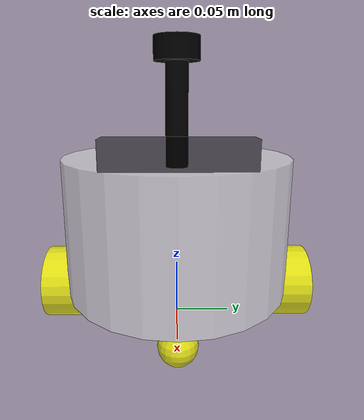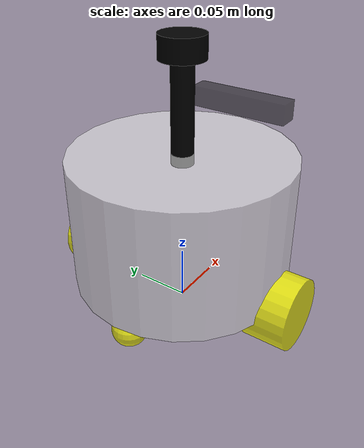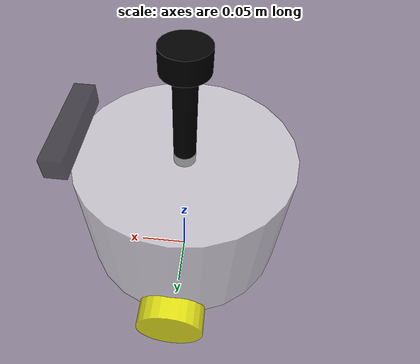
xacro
<?xml version="1.0"?>
<robot xmlns:xacro="http://www.ros.org/wiki/xacro" name="fishbot">

<!--主体部分  -->
<xacro:include filename="$(find fishbot_description)/urdf/fishbot/base.urdf.xacro"/>
<!-- 传感器部分 -->
<xacro:include filename="$(find fishbot_description)/urdf/fishbot/sensor/imu.urdf.xacro"/>
<xacro:include filename="$(find fishbot_description)/urdf/fishbot/sensor/camera.urdf.xacro"/>
<xacro:include filename="$(find fishbot_description)/urdf/fishbot/sensor/laser.urdf.xacro"/>

<!-- 执行器部分 -->
<xacro:include filename="$(find fishbot_description)/urdf/fishbot/actuator/wheel.urdf.xacro"/>
<xacro:include filename="$(find fishbot_description)/urdf/fishbot/actuator/caster.urdf.xacro"/>

<!-- 插件部分 -->
<xacro:include filename="$(find fishbot_description)/urdf/fishbot/plugins/gazebo_control_plugin.xacro"/>
<xacro:include filename="$(find fishbot_description)/urdf/fishbot/plugins/gazebo_sensor_plugin.xacro"/>
<xacro:include filename="$(find fishbot_description)/urdf/fishbot/fishbot.ros2_control.xacro"/>

<xacro:base_xacro length = "0.12" radius = "0.10" />
<xacro:imu_xacro xyz="0.0 0.0 0.02" />
<xacro:camera_xacro xyz="0.10 0.0 0.075" />
<xacro:laser_xacro xyz="0.0 0.0 0.10" />

<xacro:wheel_xacro  wheel_name = "left_wheel" xyz = "0 0.10 -0.06" />
<xacro:wheel_xacro  wheel_name = "right_wheel" xyz = "0 -0.10 -0.06" />

<xacro:caster_xacro  caster_name = "front_caster" xyz = "0.08 0 -0.076" />
<xacro:caster_xacro  caster_name = "back_caster" xyz = "-0.08 0 -0.076" />

<!-- 防止ros2_control插件和gazebo插件控制两轮差速硬件冲突，因此注释掉gazebo_control 插件 -->
<xacro:gazebo_sensor_plugin />
<xacro:fishbot_ros2_control />
</robot>

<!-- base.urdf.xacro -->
<robot xmlns:xacro="http://www.ros.org/wiki/xacro" >
<!-- 引入对应转动惯量矩阵的宏文件 -->
<xacro:include filename="$(find fishbot_description)/urdf/fishbot/common_inertia.xacro"/>
    <xacro:macro name="base_xacro" params="length radius">
        <link name="base_footprint" />
        <!-- 机器人的身体部分 -->
        <link name="base_link">
            <!-- 部件的外观描述 -->
            <visual>
                <!-- 沿着自己的几何中心的偏移和旋转 -->
                <origin xyz="0.0 0.0 0.0" rpy="0.0 0.0 0.0"/>
                <!-- 几何形状 -->
                <geometry>
                    <!-- 单位是m -->
                    <cylinder radius="${radius}" length="${length}"/>
                </geometry>
                <!-- 材质颜色 -->
                <material name = "white">
                    <!-- rgb表示红绿蓝，范围为0～1，a表示透明度 -->
                    <color rgba="1.0 1.0 1.0 0.5"/>
                </material>
            </visual>
            <collision>
                <!-- 沿着自己的几何中心的偏移和旋转 -->
                <origin xyz="0.0 0.0 0.0" rpy="0.0 0.0 0.0"/>
                <!-- 几何形状 -->
                <geometry>
                    <!-- 单位是m -->
                    <cylinder radius="${radius}" length="${length}"/>
                </geometry>
                <!-- 材质颜色 -->
                <material name = "white">
                    <!-- rgb表示红绿蓝，范围为0～1，a表示透明度 -->
                    <color rgba="1.0 1.0 1.0 0.5"/>
                </material>
            </collision>

            <xacro:cylinder_inertia m ="1.0" r="${radius}" h="${length}" />
        </link>

        <joint name="joint_name" type="fixed">
            <origin xyz="0.0 0.0 ${length/2.0 +0.03205}" rpy="0.0 0.0 0.0"/>
            <parent link="base_footprint"/>
            <child link="base_link"/>
        </joint>
    </xacro:macro>
</robot>

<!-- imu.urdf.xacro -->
<robot xmlns:xacro="http://www.ros.org/wiki/xacro" >
<xacro:include filename="$(find fishbot_description)/urdf/fishbot/common_inertia.xacro"/>
    <xacro:macro name="imu_xacro" params="xyz">
        <!-- 机器人的IMU（Inertial Measurement Unit）部件，惯性测量单元 -->
        <link name="imu_link">
            <!-- 部件的外观描述 -->
            <visual>
                <!-- 沿着自己的几何中心的偏移和旋转 -->
                <origin xyz="0.0 0.0 0.0" rpy="0.0 0.0 0.0"/>
                <!-- 几何形状 -->
                <geometry>
                        <box size="0.02 0.02 0.02"/>
                </geometry>
                <!-- 材质颜色 -->
                <material name = "black">
                    <!-- rgb表示红绿蓝，范围为0～1，a表示透明度 -->
                    <color rgba="0.0 0.0 0.0 0.5"/>
                </material>
            </visual>
            <collision>
                <!-- 沿着自己的几何中心的偏移和旋转 -->
                <origin xyz="0.0 0.0 0.0" rpy="0.0 0.0 0.0"/>
                <!-- 几何形状 -->
                <geometry>
                        <box size="0.02 0.02 0.02"/>
                </geometry>
                <!-- 材质颜色 -->
                <material name = "black">
                    <!-- rgb表示红绿蓝，范围为0～1，a表示透明度 -->
                    <color rgba="0.0 0.0 0.0 0.5"/>
                </material>
            </collision>

            <xacro:box_inertia m ="0.01" w="0.02" h="0.02" d="0.02"  />
        </link>

        <!-- 机器人的关节 Joint，用于组合机器人的部件 -->
        <joint name="imu_joint" type="fixed">
            <origin xyz="${xyz}" rpy="0.0 0.0 0.0"/>
            <parent link="base_link"/>
            <child link="imu_link"/>
        </joint>
    </xacro:macro>
</robot>

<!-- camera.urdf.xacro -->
<robot xmlns:xacro="http://www.ros.org/wiki/xacro" >
<xacro:include filename="$(find fishbot_description)/urdf/fishbot/common_inertia.xacro"/>
    <xacro:macro name="camera_xacro" params="xyz">
        <link name="camera_link">
            <!-- 部件的外观描述 -->
            <visual>
                <!-- 沿着自己的几何中心的偏移和旋转 -->
                <origin xyz="0.0 0.0 0.0" rpy="0.0 0.0 0.0"/>
                <!-- 几何形状 -->
                <geometry>
                        <box size="0.02 0.10 0.02"/>
                </geometry>
                <!-- 材质颜色 -->
                <material name = "black">
                    <!-- rgb表示红绿蓝，范围为0～1，a表示透明度 -->
                    <color rgba="0.0 0.0 0.0 0.5"/>
                </material>
            </visual>
            <collision>
                <!-- 沿着自己的几何中心的偏移和旋转 -->
                <origin xyz="0.0 0.0 0.0" rpy="0.0 0.0 0.0"/>
                <!-- 几何形状 -->
                <geometry>
                        <box size="0.02 0.10 0.02"/>
                </geometry>
                <!-- 材质颜色 -->
                <material name = "black">
                    <!-- rgb表示红绿蓝，范围为0～1，a表示透明度 -->
                    <color rgba="0.0 0.0 0.0 0.5"/>
                </material>
            </collision>

            <xacro:box_inertia m ="0.01" w="0.02" h="0.10" d="0.02"  />
        </link>

        <link name="camera_optical_link">
            <!-- 深度相机和彩色相机结合获取三维坐标数据 -->
            <!-- 一般深度相机的面向方向为Z轴，因此需要使用虚拟部件来转换坐标系,将base_link坐标系转换为z轴向前的坐标系 -->

        </link>

        <!-- 机器人的关节 Joint，用于组合机器人的部件 -->
        <joint name="camera_joint" type="fixed">
            <origin xyz="${xyz}" rpy="0.0 0.0 0.0"/>
            <parent link="base_link"/>
            <child link="camera_link"/>
        </joint>
        <joint name="camera_optical_joint" type="fixed">
            <origin xyz="0 0 0 " rpy="${-pi/2} 0.0 ${-pi/2}"/>
            <parent link="camera_link"/>
            <child link="camera_optical_link"/>
        </joint>

    </xacro:macro>
</robot>

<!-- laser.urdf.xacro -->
<robot xmlns:xacro="http://www.ros.org/wiki/xacro" >
<xacro:include filename="$(find fishbot_description)/urdf/fishbot/common_inertia.xacro"/>
    <xacro:macro name="laser_xacro" params="xyz">
        <!-- 雷达支撑杆 -->
        <link name="laser_cylinder_link" >
            <!-- 部件的外观描述 -->
            <visual>
                <!-- 沿着自己的几何中心的偏移和旋转 -->
                <origin xyz="0.0 0.0 0.0" rpy="0.0 0.0 0.0"/>
                <!-- 几何形状 -->
                <geometry>
                    <cylinder radius="0.01" length="0.10"/>
                </geometry>
                <!-- 材质颜色 -->
                <material name = "black">
                    <!-- rgb表示红绿蓝，范围为0～1，a表示透明度 -->
                    <color rgba="0.0 0.0 0.0 1.0"/>
                </material>
            </visual>
            <collision>
                <!-- 沿着自己的几何中心的偏移和旋转 -->
                <origin xyz="0.0 0.0 0.0" rpy="0.0 0.0 0.0"/>
                <!-- 几何形状 -->
                <geometry>
                    <cylinder radius="0.01" length="0.10"/>
                </geometry>
                <!-- 材质颜色 -->
                <material name = "black">
                    <!-- rgb表示红绿蓝，范围为0～1，a表示透明度 -->
                    <color rgba="0.0 0.0 0.0 1.0"/>
                </material>
            </collision>

            <xacro:cylinder_inertia m ="0.05" r="0.01" h="0.10" />
        </link>

        <!-- 雷达 -->
        <link name="laser_link">
            <!-- 部件的外观描述 -->
            <visual>
                <!-- 沿着自己的几何中心的偏移和旋转 -->
                <origin xyz="0.0 0.0 0.0" rpy="0.0 0.0 0.0"/>
                <!-- 几何形状 -->
                <geometry>
                    <cylinder radius="0.02" length="0.02"/>
                </geometry>
                <!-- 材质颜色 -->
                <material name = "black">
                    <!-- rgb表示红绿蓝，范围为0～1，a表示透明度 -->
                    <color rgba="0.0 0.0 0.0 1.0"/>
                </material>
            </visual>
            <collision>
                <!-- 沿着自己的几何中心的偏移和旋转 -->
                <origin xyz="0.0 0.0 0.0" rpy="0.0 0.0 0.0"/>
                <!-- 几何形状 -->
                <geometry>
                    <cylinder radius="0.02" length="0.02"/>
                </geometry>
                <!-- 材质颜色 -->
                <material name = "black">
                    <!-- rgb表示红绿蓝，范围为0～1，a表示透明度 -->
                    <color rgba="0.0 0.0 0.0 1.0"/>
                </material>
            </collision>

            <xacro:cylinder_inertia m ="0.01" r="0.02" h="0.02" />
        </link>

        <!-- 机器人的关节 Joint，用于组合机器人的部件 -->
        <joint name="laser_joint" type="fixed">
            <origin xyz="0.0 0.0 0.05" rpy="0.0 0.0 0.0"/>
            <parent link="laser_cylinder_link"/>
            <child link="laser_link"/>
        </joint>

        <joint name="laser_cylinder_joint" type="fixed">
            <origin xyz="${xyz}" rpy="0.0 0.0 0.0"/>
            <parent link="base_link" />
            <child link="laser_cylinder_link"/>
        </joint>

        <!-- Gazebo 配置 -->
        <gazebo reference='laser_cylinder_link'>
          <material>Gazebo/Black</material>
        </gazebo>

        <gazebo reference='laser_link'>
          <material>Gazebo/Black</material>
        </gazebo>

    </xacro:macro>
</robot>

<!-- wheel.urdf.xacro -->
<robot xmlns:xacro="http://www.ros.org/wiki/xacro" >
<xacro:include filename="$(find fishbot_description)/urdf/fishbot/common_inertia.xacro"/>
    <xacro:macro name="wheel_xacro" params="wheel_name xyz">
        <!-- 机器人的IMU（Inertial Measurement Unit）部件，惯性测量单元 -->
        <link name="${wheel_name}_link">
            <!-- 部件的外观描述 -->
            <visual>
                <!-- 沿着自己的几何中心的偏移和旋转 -->
                <origin xyz="0.0 0.0 0.0" rpy="1.57079 0.0 0.0"/>
                <!-- 几何形状 -->
                <geometry>
                    <cylinder radius="0.03205" length="0.04"/>
                </geometry>
                <!-- 材质颜色 -->
                <material name = "yellow">
                    <!-- rgb表示红绿蓝，范围为0～1，a表示透明度 -->
                    <color rgba="1.0 1.0 0.0 0.8"/>
                </material>
            </visual>
            <collision>
                <!-- 沿着自己的几何中心的偏移和旋转 -->
                <origin xyz="0.0 0.0 0.0" rpy="1.57079 0.0 0.0"/>
                <!-- 几何形状 -->
                <geometry>
                    <cylinder radius="0.03205" length="0.04"/>
                </geometry>
                <!-- 材质颜色 -->
                <material name = "yellow">
                    <!-- rgb表示红绿蓝，范围为0～1，a表示透明度 -->
                    <color rgba="1.0 1.0 0.0 0.8"/>
                </material>
            </collision>

            <xacro:cylinder_inertia m ="0.1" r="0.03205" h="0.04" />
        </link>

        <!-- 机器人的关节 Joint，用于组合机器人的部件 -->
        <joint name="${wheel_name}_joint" type="continuous">
            <origin xyz="${xyz}" rpy="0.0 0.0 0.0"/>
            <axis xyz="0.0 1.0 0.0"/>
            <parent link="base_link"/>
            <child link="${wheel_name}_link"/>
        </joint>

        <!-- Gazebo 配置 -->
        <gazebo reference='${wheel_name}_link'>
            <!--mu1表示切向的阻尼系数  -->
            <mu1 value= "4.0" />
            <!--mu2表示法向的阻尼系数  -->
            <mu2 value= "2.0" />
            <!--kp表示接触的刚度系数  -->
            <kp value= "1000000.0" />
            <!--kd表示接触的阻尼系数  -->
            <kd value= "1.0" />
        </gazebo>

    </xacro:macro>
</robot>

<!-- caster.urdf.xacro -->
<robot xmlns:xacro="http://www.ros.org/wiki/xacro" >
<xacro:include filename="$(find fishbot_description)/urdf/fishbot/common_inertia.xacro"/>
    <xacro:macro name="caster_xacro" params="caster_name xyz">
        <!-- 机器人的IMU（Inertial Measurement Unit）部件，惯性测量单元 -->
        <link name="${caster_name}_link">
            <!-- 部件的外观描述 -->
            <visual>
                <!-- 沿着自己的几何中心的偏移和旋转 -->
                <origin xyz="0.0 0.0 0.0" rpy="0.0 0.0 0.0"/>
                <!-- 几何形状 -->
                <geometry>
                    <sphere radius="0.016"/>
                </geometry>
                <!-- 材质颜色 -->
                <material name = "yellow">
                    <!-- rgb表示红绿蓝，范围为0～1，a表示透明度 -->
                    <color rgba="1.0 1.0 0.0 0.8"/>
                </material>
            </visual>
            <collision>
                <!-- 沿着自己的几何中心的偏移和旋转 -->
                <origin xyz="0.0 0.0 0.0" rpy="0.0 0.0 0.0"/>
                <!-- 几何形状 -->
                <geometry>
                    <sphere radius="0.016"/>
                </geometry>
                <!-- 材质颜色 -->
                <material name = "yellow">
                    <!-- rgb表示红绿蓝，范围为0～1，a表示透明度 -->
                    <color rgba="1.0 1.0 0.0 0.8"/>
                </material>
            </collision>

            <xacro:sphere_inertia m ="0.1" r="0.016" />
        </link>

        <!-- 机器人的关节 Joint，用于组合机器人的部件 -->
        <joint name="${caster_name}_joint" type="fixed">
            <origin xyz="${xyz}" rpy="0.0 0.0 0.0"/>
            <parent link="base_link"/>
            <child link="${caster_name}_link"/>
        </joint>

        <!-- Gazebo 配置 -->
        <gazebo reference='${caster_name}_link'>
            <!--mu1表示切向的阻尼系数  -->
            <mu1 value= "0.01" />
            <!--mu2表示法向的阻尼系数  -->
            <mu2 value= "0.01" />
            <!--kp表示接触的刚度系数  -->
            <kp value= "1000000.0" />
            <!--kd表示接触的阻尼系数  -->
            <kd value= "100.0" />
        </gazebo>

    </xacro:macro>
</robot>
